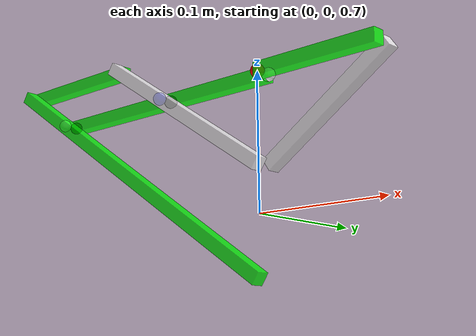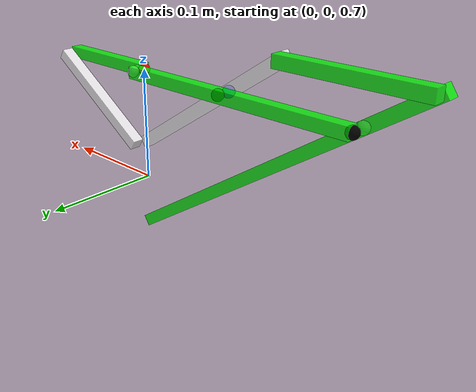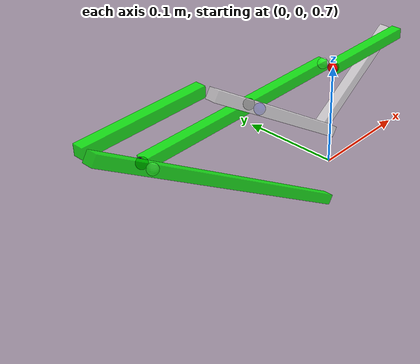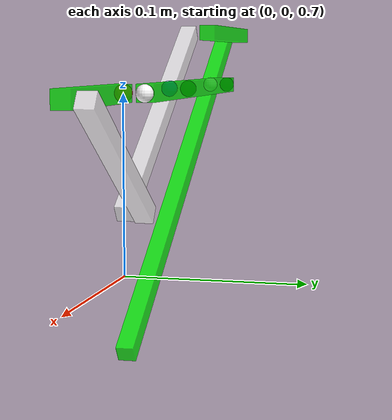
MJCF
<mujoco>
    <compiler angle="radian" meshdir="meshes" autolimits="true" />
    <option timestep="0.002" gravity="0 0 -9.81" integrator="implicitfast" density="1.225" viscosity="1.8e-5" />
    <asset>
        <mesh name="tetrahedron" vertex="0 0 0 1 0 0 0 1 0 0 0 1" />
        <texture type="skybox" builtin="gradient" rgb1=".1 .1 .1" rgb2=".9 .9 .9" width="512" height="512"/>
        <texture name="plane" type="2d" builtin="checker" rgb1=".1 .1 .1" rgb2=".9 .9 .9"
            width="512" height="512" mark="cross" markrgb=".8 .8 .8" />
        <material name="plane" reflectance="0.3" texture="plane" texrepeat="1 1" texuniform="true" />
    </asset>

    <default>
         <joint damping="0.01"/>
    </default>

    <worldbody>
        <geom type="plane" material="plane" pos="0 0 0" size="0 0 .25"/>
        <light directional="true" dir="0 0 -1" diffuse="1 1 1" specular=".5 .5 .5"/>

        <body>
            <geom type="sphere" size="0.001" mass="0.001" rgba="0 0 0 0"/>
            <body name="l1" pos="0 0 .8">
                <geom type="box" size=".005" fromto="0 0 0 0.098 0 0" rgba="0 1 0 .8" pos="0 0 0"/>
                <joint type="hinge" name="joint_l1" pos="0 0 0" axis="0 1 0"/>
                <site type="sphere" name="l1" size=".005" pos="0 0 0" rgba="1 0 0 1"/>

                <body name="l2" pos="0.098 0.012 0">
                    <joint type="hinge" name="joint_l2" pos="0 0 0" axis="0 1 0"/>
                    <geom type="box" size="0.005" fromto="0 0 0 -0.098 0 -0.06573" rgba="1 1 1 .8" />

                    <body name="l3" pos="-0.098 -0.012 -0.06573">
                    <joint type="hinge" name="joint_l3" pos="0 0 0" axis="0 1 0"/>
                    <geom type="box" size="0.005" fromto="0 0 0 -0.15115 0 0.10138" rgba="1 1 1 .8" />
                    <site type="sphere" name="l3" size=".005" pos="-0.098 0 0.06573" rgba="0 0 1 1"/>

                    <body name="l4" pos="-0.15115 0.012 0.10138">
                    <joint type="hinge" name="joint_l4" pos="0 0 0" axis="0 1 0"/>
                    <geom type="box" size="0.005" fromto="0 0 0 -0.117 0 0" rgba="0 1 0 .8" />

                    <body name="l5" pos="-0.117 -0.012 0">
                    <joint type="hinge" name="joint_l5" pos="0 0 0" axis="0 1 0"/>
                    <geom type="box" size="0.005" fromto="0 0 0 0.26742 0 -0.17936" rgba="0 1 0 .8" />
                    <site type="sphere" name="l5" size=".005" pos="0.05315 0 -0.03565" rgba="1 1 1 1"/>

                    </body>
                    </body>
                    </body>
                    </body>
            </body>

            <body name="l6" pos="0 0.012 0.8">
              <joint type="hinge" name="joint_l6" pos="0 0 0" axis="0 1 0"/>
              <geom type="box" size="0.005" fromto="0 0 0 -0.215 0 0" rgba="0 1 0 .8" />
              <site type="sphere" name="l6r" size=".005" pos="0 0 0" rgba="1 1 1 1"/>
              <site type="sphere" name="l6m" size=".005" pos="-0.098 0 0" rgba="0 0 0 1"/>
              <site type="sphere" name="l6l" size=".005" pos="-0.215 0 0" rgba="0 0 0 1"/>
            </body>

        </body>

    </worldbody>

    <equality>
         <connect site1="l3" site2="l6m"/>
         <connect site1="l5" site2="l6l"/>
    </equality>

</mujoco>
